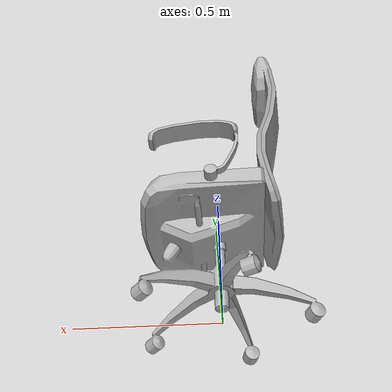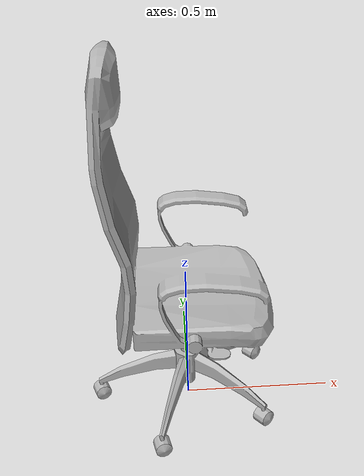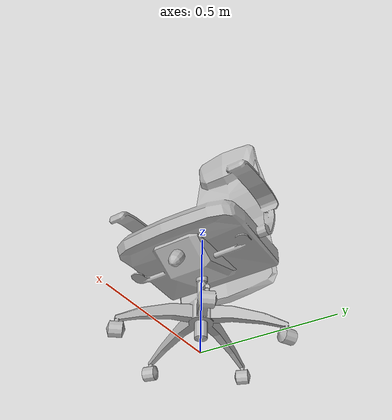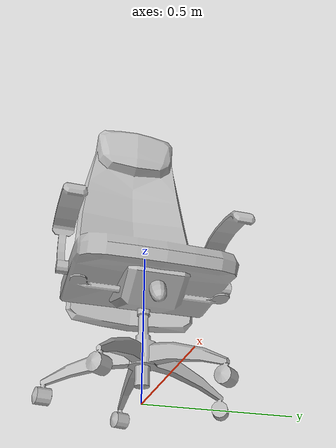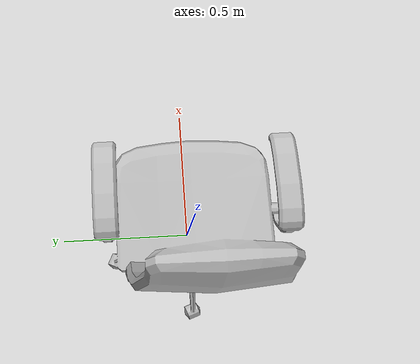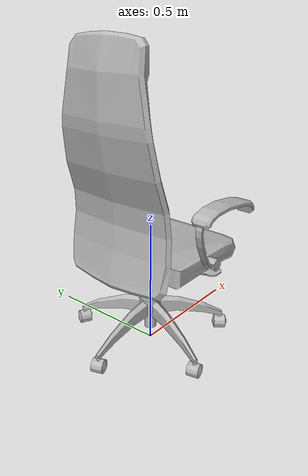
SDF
<?xml version="1.0" ?>
<sdf version="1.5">
    <model name="DeskChair">
        <static>true</static>
        <link name="link">
            <pose>0 0 0 0 0 1.57079632679</pose>
            <collision name="collision">
                <pose>0.001581 0.000308 0.612847 0 0 0</pose>
                <geometry>
                    <cylinder>
                        <radius>0.33</radius>
                        <length>1.23</length>
                    </cylinder>
                </geometry>
            </collision>
            <visual name="visual">
                <geometry>
                    <mesh>
                        <uri>meshes/DeskChair.obj</uri>
                        <scale>0.010 0.010 0.010</scale>
                    </mesh>
                </geometry>
            </visual>
        </link>
    </model>
</sdf>
